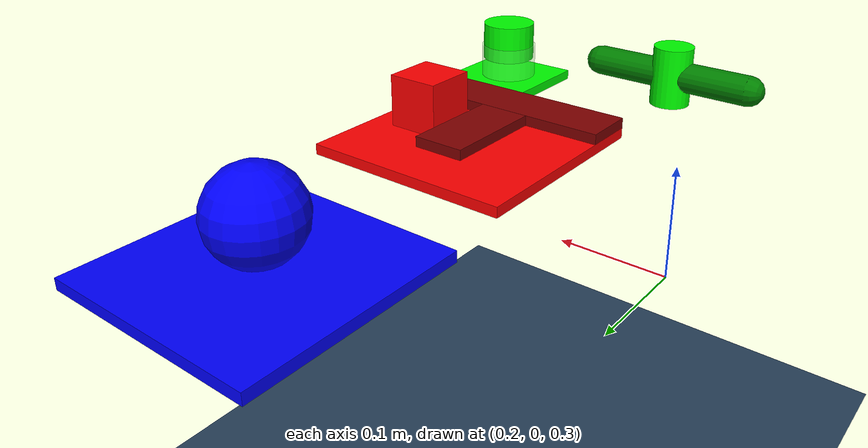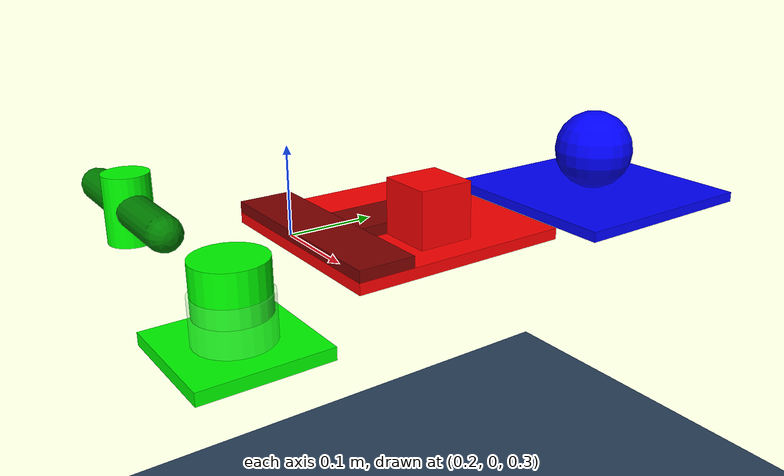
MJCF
<mujoco model="arena">
  <asset>
    <texture type='skybox' builtin='gradient' rgb1='.4 .6 .8' rgb2='0 0 0' width='100' height='100'/>
    <texture name='groundplane' type='2d' builtin='checker' rgb1='.2 .3 .4' rgb2='.1 .2 .3' width='300' height='300' mark='edge' markrgb='.8 .8 .8'/>
    <material name='groundplane' texture='groundplane' texrepeat='5 5' texuniform='true' reflectance='.2'/>
  </asset>
  <default>
    <geom solimp="0.9 0.95 0.001 0.5 2" solref="0.005 1" condim="6" />
  </default>
  <worldbody>
    <camera name="default_view" mode="targetbody" target="panda/panda_gripper/panda_rightfinger" pos="1.244 -0.603 1.202"/>
    <geom name='ground' type='plane' size='2 2 2' material='groundplane'
        friction='0.4'/>
    <light directional='true' diffuse='.7 .7 .7' pos='1 .1 2' dir='0 -.1 -2' specular='.3 .3 .3' castshadow='true'/>
    <body pos="0.4 0. 0.37">
      <geom type="box" size="0.1 0.1 0.005" rgba="1 0 0 1"/>
      <geom pos="0 -0.075 0.01" type="box" size="0.1 0.025 0.005" rgba="0.5 0 0 1"/>
      <geom pos="0 0 0.01" type="box" size="0.025 0.05 0.005" rgba="0.5 0 0 1"/>
    </body>
    <body pos="0.45 0 0.4" >
      <geom type="box" size=".025 .025 .025"  rgba="1 0 0 1" />
      <joint type="slide" damping="50" axis="0 1 0" range="-0.075 0.075" />
      <joint type="slide" damping="50" axis="1 0 0" range="-0.125 0.025" />
    </body>
    <body pos="0.4 0.25 0.355">
      <geom type="box" size="0.1 0.1 0.005" rgba="0 0 1 1"/>
    </body>
    <body pos="0.4 0.25 0.4">
      <geom type="sphere" size="0.04" rgba="0 0 1 1" />
      <joint type="slide" axis="0 1 0" range="-0.1 0.1" />
      <joint type="slide" axis="1 0 0" range="-0.1 0.1" />
    </body>

    <body pos="0.5 -0.2 0.355">
      <geom type="box" size="0.05 0.05 0.005" rgba="0 1 0 1"/>
      <geom type="cylinder" pos="0 0 0.02" size="0.03 0.02" rgba="0.5 1 0.5 0.3" contype="0" conaffinity="0" group="1"/>
    </body>
    <body pos="0.5 -0.2 0.4">
      <geom type="cylinder" size="0.028 0.02" rgba="0 1 0 1" />
      <joint type="slide" axis="0 0 1" range="-0.02 0" damping="10.0" stiffness="100"/>
    </body>

    <body pos="0.3 -0.2 0.4">
        <geom type="capsule" fromto="-0.08 0 0 0.08 0 0" size="0.015" rgba="0 0.5 0 1"/>
        <geom type="cylinder" size="0.02 0.03" rgba="0 1 0 1"/>
        <joint type="hinge" axis="0 0 1" damping="10" armature="0.01"/>
    </body>

  </worldbody>
</mujoco>
